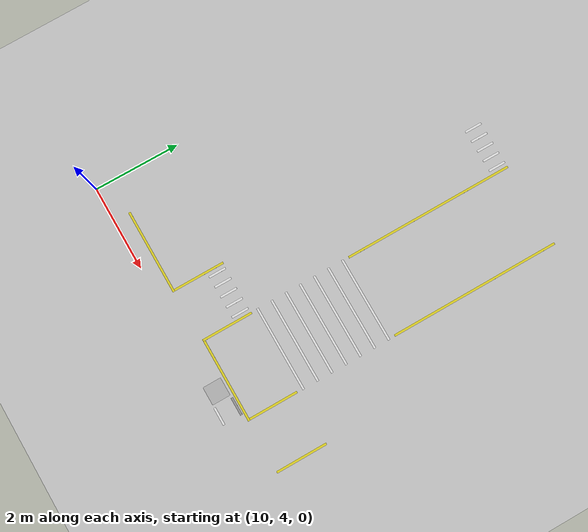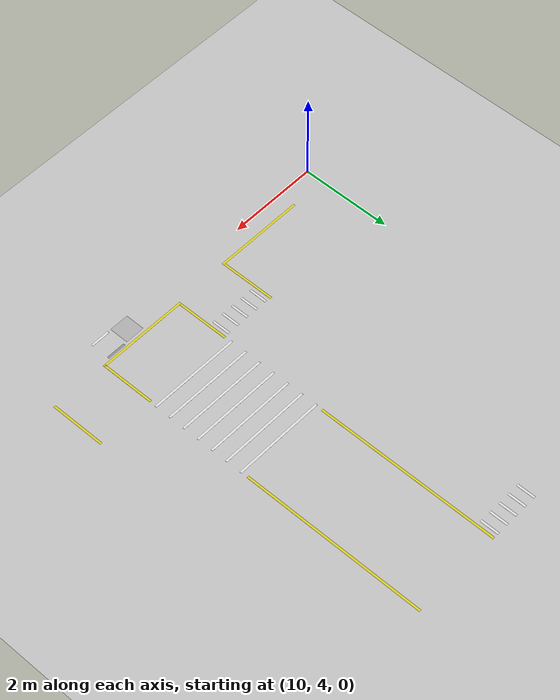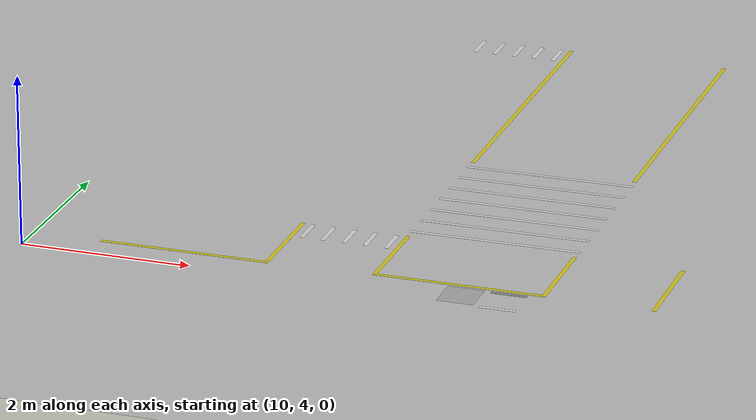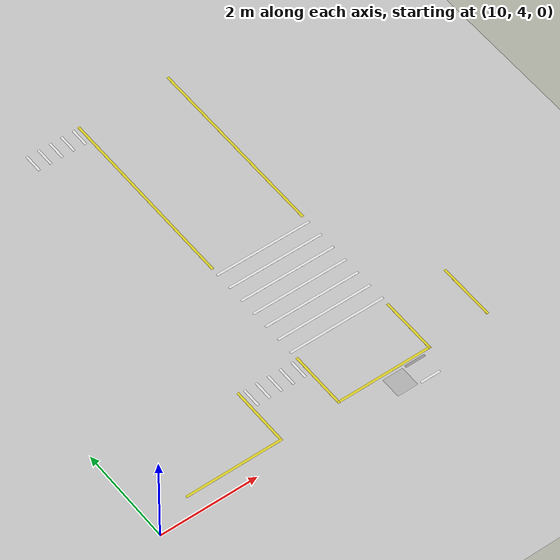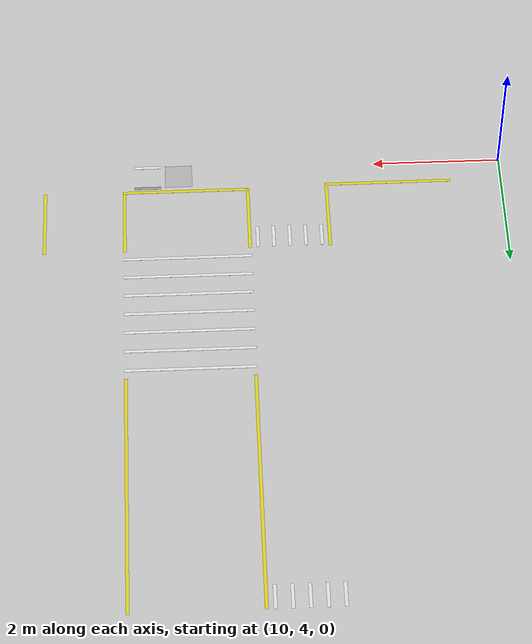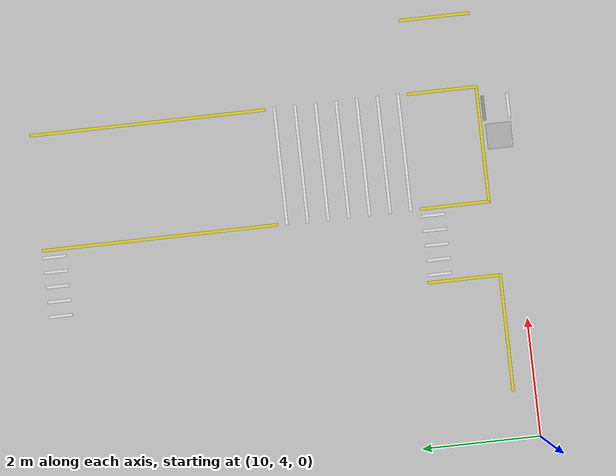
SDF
<sdf version="1.6">
 <world name="default">
  <model name="ground_plane">
   <static>1</static>
   <link name="link">
    <collision name="collision">
     <geometry><plane><normal>0 0 1</normal><size>100 100</size></plane></geometry>
     <surface><friction><ode><mu>100</mu><mu2>50</mu2></ode></friction></surface>
    </collision>
    <visual name="visual">
     <cast_shadows>0</cast_shadows>
     <geometry><plane><normal>0 0 1</normal><size>100 100</size></plane></geometry>
     <material>
      <script><uri>file://media/materials/scripts/gazebo.material</uri><name>Gazebo/Grey</name></script>
     </material>
    </visual>
   </link>
  </model>
  <model name="whiteLine_42_3">
   <link name="link_3">
    <inertial>
     <mass>1</mass>
     <inertia>
      <ixx>0.166667</ixx>
      <ixy>0</ixy>
      <ixz>0</ixz>
      <iyy>0.166667</iyy>
      <iyz>0</iyz>
      <izz>0.166667</izz>
     </inertia>
    </inertial>
    <visual name="visual">
     <pose>-0.21 0 0 0 -0 0</pose>
     <geometry><box><size>0.05 0.42 0.001</size></box></geometry>
     <material>
      <lighting>1</lighting>
      <script><uri>file://media/materials/scripts/gazebo.material</uri><name>Gazebo/White</name></script>
      <shader type="pixel"><normal_map>__default__</normal_map></shader>
      <ambient>1 1 1 1</ambient>
      <diffuse>1 1 1 1</diffuse>
      <specular>0.01 0.01 0.01 1</specular>
      <emissive>0 0 0 1</emissive>
     </material>
    </visual>
    <visual name="ModelPreview_7::link_3::visual_1">
     <pose>0.21 0 0 0 -0 0</pose>
     <geometry><box><size>0.05 0.42 0.001</size></box></geometry>
     <material>
      <lighting>1</lighting>
      <script><uri>file://media/materials/scripts/gazebo.material</uri><name>Gazebo/Grey</name></script>
      <shader type="pixel"><normal_map>__default__</normal_map></shader>
      <ambient>1 1 1 1</ambient>
      <diffuse>1 1 1 1</diffuse>
      <specular>0.01 0.01 0.01 1</specular>
      <emissive>0 0 0 1</emissive>
     </material>
    </visual>
    <collision name="collision">
     <pose>-0.21 0 0 0 -0 0</pose>
     <geometry><box><size>0.05 0.42 1e-05</size></box></geometry>
     <surface>
      <friction>
       <ode><mu>1</mu><mu2>1</mu2><fdir1>0 0 0</fdir1><slip1>0</slip1><slip2>0</slip2></ode>
       <torsional>
        <coefficient>1</coefficient>
        <patch_radius>0</patch_radius>
        <surface_radius>0</surface_radius>
        <use_patch_radius>1</use_patch_radius>
        <ode><slip>0</slip></ode>
       </torsional>
      </friction>
      <bounce><restitution_coefficient>0</restitution_coefficient><threshold>1e+06</threshold></bounce>
      <contact>
       <collide_without_contact>0</collide_without_contact>
       <collide_without_contact_bitmask>1</collide_without_contact_bitmask>
       <collide_bitmask>1</collide_bitmask>
       <ode>
        <soft_cfm>0</soft_cfm>
        <soft_erp>0.2</soft_erp>
        <kp>1e+13</kp>
        <kd>1</kd>
        <max_vel>0.01</max_vel>
        <min_depth>0</min_depth>
       </ode>
       <bullet>
        <split_impulse>1</split_impulse>
        <split_impulse_penetration_threshold>-0.01</split_impulse_penetration_threshold>
        <soft_cfm>0</soft_cfm>
        <soft_erp>0.2</soft_erp>
        <kp>1e+13</kp>
        <kd>1</kd>
       </bullet>
      </contact>
     </surface>
    </collision>
    <collision name="collision_1">
     <pose>0.21 0 0 0 -0 0</pose>
     <geometry><box><size>0.05 0.42 1e-05</size></box></geometry>
     <surface>
      <friction>
       <ode><mu>1</mu><mu2>1</mu2><fdir1>0 0 0</fdir1><slip1>0</slip1><slip2>0</slip2></ode>
       <torsional>
        <coefficient>1</coefficient>
        <patch_radius>0</patch_radius>
        <surface_radius>0</surface_radius>
        <use_patch_radius>1</use_patch_radius>
        <ode><slip>0</slip></ode>
       </torsional>
      </friction>
      <bounce><restitution_coefficient>0</restitution_coefficient><threshold>1e+06</threshold></bounce>
      <contact>
       <collide_without_contact>0</collide_without_contact>
       <collide_without_contact_bitmask>1</collide_without_contact_bitmask>
       <collide_bitmask>1</collide_bitmask>
       <ode>
        <soft_cfm>0</soft_cfm>
        <soft_erp>0.2</soft_erp>
        <kp>1e+13</kp>
        <kd>1</kd>
        <max_vel>0.01</max_vel>
        <min_depth>0</min_depth>
       </ode>
       <bullet>
        <split_impulse>1</split_impulse>
        <split_impulse_penetration_threshold>-0.01</split_impulse_penetration_threshold>
        <soft_cfm>0</soft_cfm>
        <soft_erp>0.2</soft_erp>
        <kp>1e+13</kp>
        <kd>1</kd>
       </bullet>
      </contact>
     </surface>
    </collision>
   </link>
   <static>1</static>
   <pose>15.6004 4.13233 0 0 -0 1.5708</pose>
  </model>
  <model name="forkliftRoadSign">
   <link name="link_7">
    <inertial>
     <mass>1</mass>
     <inertia>
      <ixx>0.166667</ixx>
      <ixy>0</ixy>
      <ixz>0</ixz>
      <iyy>0.166667</iyy>
      <iyz>0</iyz>
      <izz>0.166667</izz>
     </inertia>
    </inertial>
    <visual name="visual">
     <pose>-0.2 -0.2 0.01 -1.5708 -0 0</pose>
     <geometry>
      <mesh><uri>model://forkliftRoadSign/model/model.dae</uri><scale>0.7 0.7 0.7</scale></mesh>
     </geometry>
     <material><lighting>1</lighting></material>
    </visual>
    <collision name="collision">
     <geometry><box><size>0.4 0.4 1e-05</size></box></geometry>
     <surface>
      <friction>
       <ode><mu>1</mu><mu2>1</mu2><fdir1>0 0 0</fdir1><slip1>0</slip1><slip2>0</slip2></ode>
       <torsional>
        <coefficient>1</coefficient>
        <patch_radius>0</patch_radius>
        <surface_radius>0</surface_radius>
        <use_patch_radius>1</use_patch_radius>
        <ode><slip>0</slip></ode>
       </torsional>
      </friction>
      <bounce><restitution_coefficient>0</restitution_coefficient><threshold>1e+06</threshold></bounce>
      <contact>
       <collide_without_contact>0</collide_without_contact>
       <collide_without_contact_bitmask>1</collide_without_contact_bitmask>
       <collide_bitmask>1</collide_bitmask>
       <ode>
        <soft_cfm>0</soft_cfm>
        <soft_erp>0.2</soft_erp>
        <kp>1e+13</kp>
        <kd>1</kd>
        <max_vel>0.01</max_vel>
        <min_depth>0</min_depth>
       </ode>
       <bullet>
        <split_impulse>1</split_impulse>
        <split_impulse_penetration_threshold>-0.01</split_impulse_penetration_threshold>
        <soft_cfm>0</soft_cfm>
        <soft_erp>0.2</soft_erp>
        <kp>1e+13</kp>
        <kd>1</kd>
       </bullet>
      </contact>
     </surface>
    </collision>
   </link>
   <static>1</static>
   <pose>15.1 4.14241 0 0 0 -1.5708</pose>
  </model>
  <model name="line2m">
   <link name="link_0">
    <inertial>
     <mass>1</mass>
     <inertia>
      <ixx>0.166667</ixx>
      <ixy>0</ixy>
      <ixz>0</ixz>
      <iyy>0.166667</iyy>
      <iyz>0</iyz>
      <izz>0.166667</izz>
     </inertia>
    </inertial>
    <visual name="visual">
     <geometry><box><size>2 0.05 0.001</size></box></geometry>
     <material>
      <lighting>1</lighting>
      <script><uri>file://media/materials/scripts/gazebo.material</uri><name>Gazebo/Yellow</name></script>
     </material>
    </visual>
    <collision name="collision">
     <geometry><box><size>2 0.05 1e-05</size></box></geometry>
     <surface>
      <friction>
       <ode><mu>1</mu><mu2>1</mu2><fdir1>0 0 0</fdir1><slip1>0</slip1><slip2>0</slip2></ode>
       <torsional>
        <coefficient>1</coefficient>
        <patch_radius>0</patch_radius>
        <surface_radius>0</surface_radius>
        <use_patch_radius>1</use_patch_radius>
        <ode><slip>0</slip></ode>
       </torsional>
      </friction>
      <bounce><restitution_coefficient>0</restitution_coefficient><threshold>1e+06</threshold></bounce>
      <contact>
       <collide_without_contact>0</collide_without_contact>
       <collide_without_contact_bitmask>1</collide_without_contact_bitmask>
       <collide_bitmask>1</collide_bitmask>
       <ode>
        <soft_cfm>0</soft_cfm>
        <soft_erp>0.2</soft_erp>
        <kp>1e+13</kp>
        <kd>1</kd>
        <max_vel>0.01</max_vel>
        <min_depth>0</min_depth>
       </ode>
       <bullet>
        <split_impulse>1</split_impulse>
        <split_impulse_penetration_threshold>-0.01</split_impulse_penetration_threshold>
        <soft_cfm>0</soft_cfm>
        <soft_erp>0.2</soft_erp>
        <kp>1e+13</kp>
        <kd>1</kd>
       </bullet>
      </contact>
     </surface>
    </collision>
   </link>
   <static>1</static>
   <pose>15 4.425 0 0 -0 0</pose>
  </model>
  <model name="line2m_0">
   <link name="link_0">
    <inertial>
     <mass>1</mass>
     <inertia>
      <ixx>0.166667</ixx>
      <ixy>0</ixy>
      <ixz>0</ixz>
      <iyy>0.166667</iyy>
      <iyz>0</iyz>
      <izz>0.166667</izz>
     </inertia>
    </inertial>
    <visual name="visual">
     <geometry><box><size>2 0.05 0.001</size></box></geometry>
     <material>
      <lighting>1</lighting>
      <script><uri>file://media/materials/scripts/gazebo.material</uri><name>Gazebo/Yellow</name></script>
     </material>
    </visual>
    <collision name="collision">
     <geometry><box><size>2 0.05 1e-05</size></box></geometry>
     <surface>
      <friction>
       <ode><mu>1</mu><mu2>1</mu2><fdir1>0 0 0</fdir1><slip1>0</slip1><slip2>0</slip2></ode>
       <torsional>
        <coefficient>1</coefficient>
        <patch_radius>0</patch_radius>
        <surface_radius>0</surface_radius>
        <use_patch_radius>1</use_patch_radius>
        <ode><slip>0</slip></ode>
       </torsional>
      </friction>
      <bounce><restitution_coefficient>0</restitution_coefficient><threshold>1e+06</threshold></bounce>
      <contact>
       <collide_without_contact>0</collide_without_contact>
       <collide_without_contact_bitmask>1</collide_without_contact_bitmask>
       <collide_bitmask>1</collide_bitmask>
       <ode>
        <soft_cfm>0</soft_cfm>
        <soft_erp>0.2</soft_erp>
        <kp>1e+13</kp>
        <kd>1</kd>
        <max_vel>0.01</max_vel>
        <min_depth>0</min_depth>
       </ode>
       <bullet>
        <split_impulse>1</split_impulse>
        <split_impulse_penetration_threshold>-0.01</split_impulse_penetration_threshold>
        <soft_cfm>0</soft_cfm>
        <soft_erp>0.2</soft_erp>
        <kp>1e+13</kp>
        <kd>1</kd>
       </bullet>
      </contact>
     </surface>
    </collision>
   </link>
   <static>1</static>
   <pose>11.8 4.375 0 0 -0 0</pose>
  </model>
  <model name="line120cm_9">
   <link name="link_1">
    <inertial>
     <mass>1</mass>
     <inertia>
      <ixx>0.166667</ixx>
      <ixy>0</ixy>
      <ixz>0</ixz>
      <iyy>0.166667</iyy>
      <iyz>0</iyz>
      <izz>0.166667</izz>
     </inertia>
    </inertial>
    <visual name="visual">
     <geometry><box><size>1.2 0.05 0.001</size></box></geometry>
     <material>
      <script><uri>file://media/materials/scripts/gazebo.material</uri><name>Gazebo/Yellow</name></script>
     </material>
    </visual>
    <collision name="collision">
     <geometry><box><size>1.2 0.05 1e-05</size></box></geometry>
     <surface>
      <friction>
       <ode><mu>1</mu><mu2>1</mu2><fdir1>0 0 0</fdir1><slip1>0</slip1><slip2>0</slip2></ode>
       <torsional>
        <coefficient>1</coefficient>
        <patch_radius>0</patch_radius>
        <surface_radius>0</surface_radius>
        <use_patch_radius>1</use_patch_radius>
        <ode><slip>0</slip></ode>
       </torsional>
      </friction>
      <bounce><restitution_coefficient>0</restitution_coefficient><threshold>1e+06</threshold></bounce>
      <contact>
       <collide_without_contact>0</collide_without_contact>
       <collide_without_contact_bitmask>1</collide_without_contact_bitmask>
       <collide_bitmask>1</collide_bitmask>
       <ode>
        <soft_cfm>0</soft_cfm>
        <soft_erp>0.2</soft_erp>
        <kp>1e+13</kp>
        <kd>1</kd>
        <max_vel>0.01</max_vel>
        <min_depth>0</min_depth>
       </ode>
       <bullet>
        <split_impulse>1</split_impulse>
        <split_impulse_penetration_threshold>-0.01</split_impulse_penetration_threshold>
        <soft_cfm>0</soft_cfm>
        <soft_erp>0.2</soft_erp>
        <kp>1e+13</kp>
        <kd>1</kd>
       </bullet>
      </contact>
     </surface>
    </collision>
   </link>
   <static>1</static>
   <pose>14.025 5 0 0 -0 1.5708</pose>
  </model>
  <model name="line120cm_10">
   <link name="link_1">
    <inertial>
     <mass>1</mass>
     <inertia>
      <ixx>0.166667</ixx>
      <ixy>0</ixy>
      <ixz>0</ixz>
      <iyy>0.166667</iyy>
      <iyz>0</iyz>
      <izz>0.166667</izz>
     </inertia>
    </inertial>
    <visual name="visual">
     <geometry><box><size>1.2 0.05 0.001</size></box></geometry>
     <material>
      <script><uri>file://media/materials/scripts/gazebo.material</uri><name>Gazebo/Yellow</name></script>
     </material>
    </visual>
    <collision name="collision">
     <geometry><box><size>1.2 0.05 1e-05</size></box></geometry>
     <surface>
      <friction>
       <ode><mu>1</mu><mu2>1</mu2><fdir1>0 0 0</fdir1><slip1>0</slip1><slip2>0</slip2></ode>
       <torsional>
        <coefficient>1</coefficient>
        <patch_radius>0</patch_radius>
        <surface_radius>0</surface_radius>
        <use_patch_radius>1</use_patch_radius>
        <ode><slip>0</slip></ode>
       </torsional>
      </friction>
      <bounce><restitution_coefficient>0</restitution_coefficient><threshold>1e+06</threshold></bounce>
      <contact>
       <collide_without_contact>0</collide_without_contact>
       <collide_without_contact_bitmask>1</collide_without_contact_bitmask>
       <collide_bitmask>1</collide_bitmask>
       <ode>
        <soft_cfm>0</soft_cfm>
        <soft_erp>0.2</soft_erp>
        <kp>1e+13</kp>
        <kd>1</kd>
        <max_vel>0.01</max_vel>
        <min_depth>0</min_depth>
       </ode>
       <bullet>
        <split_impulse>1</split_impulse>
        <split_impulse_penetration_threshold>-0.01</split_impulse_penetration_threshold>
        <soft_cfm>0</soft_cfm>
        <soft_erp>0.2</soft_erp>
        <kp>1e+13</kp>
        <kd>1</kd>
       </bullet>
      </contact>
     </surface>
    </collision>
   </link>
   <static>1</static>
   <pose>15.975 5 0 0 -0 1.5708</pose>
  </model>
  <model name="line120cm_11">
   <link name="link_1">
    <inertial>
     <mass>1</mass>
     <inertia>
      <ixx>0.166667</ixx>
      <ixy>0</ixy>
      <ixz>0</ixz>
      <iyy>0.166667</iyy>
      <iyz>0</iyz>
      <izz>0.166667</izz>
     </inertia>
    </inertial>
    <visual name="visual">
     <geometry><box><size>1.2 0.05 0.001</size></box></geometry>
     <material>
      <script><uri>file://media/materials/scripts/gazebo.material</uri><name>Gazebo/Yellow</name></script>
     </material>
    </visual>
    <collision name="collision">
     <geometry><box><size>1.2 0.05 1e-05</size></box></geometry>
     <surface>
      <friction>
       <ode><mu>1</mu><mu2>1</mu2><fdir1>0 0 0</fdir1><slip1>0</slip1><slip2>0</slip2></ode>
       <torsional>
        <coefficient>1</coefficient>
        <patch_radius>0</patch_radius>
        <surface_radius>0</surface_radius>
        <use_patch_radius>1</use_patch_radius>
        <ode><slip>0</slip></ode>
       </torsional>
      </friction>
      <bounce><restitution_coefficient>0</restitution_coefficient><threshold>1e+06</threshold></bounce>
      <contact>
       <collide_without_contact>0</collide_without_contact>
       <collide_without_contact_bitmask>1</collide_without_contact_bitmask>
       <collide_bitmask>1</collide_bitmask>
       <ode>
        <soft_cfm>0</soft_cfm>
        <soft_erp>0.2</soft_erp>
        <kp>1e+13</kp>
        <kd>1</kd>
        <max_vel>0.01</max_vel>
        <min_depth>0</min_depth>
       </ode>
       <bullet>
        <split_impulse>1</split_impulse>
        <split_impulse_penetration_threshold>-0.01</split_impulse_penetration_threshold>
        <soft_cfm>0</soft_cfm>
        <soft_erp>0.2</soft_erp>
        <kp>1e+13</kp>
        <kd>1</kd>
       </bullet>
      </contact>
     </surface>
    </collision>
   </link>
   <static>1</static>
   <pose>12.775 5 0 0 -0 1.5708</pose>
  </model>
  <model name="line120cm_12">
   <link name="link_1">
    <inertial>
     <mass>1</mass>
     <inertia>
      <ixx>0.166667</ixx>
      <ixy>0</ixy>
      <ixz>0</ixz>
      <iyy>0.166667</iyy>
      <iyz>0</iyz>
      <izz>0.166667</izz>
     </inertia>
    </inertial>
    <visual name="visual">
     <geometry><box><size>1.2 0.05 0.001</size></box></geometry>
     <material>
      <script><uri>file://media/materials/scripts/gazebo.material</uri><name>Gazebo/Yellow</name></script>
     </material>
    </visual>
    <collision name="collision">
     <geometry><box><size>1.2 0.05 1e-05</size></box></geometry>
     <surface>
      <friction>
       <ode><mu>1</mu><mu2>1</mu2><fdir1>0 0 0</fdir1><slip1>0</slip1><slip2>0</slip2></ode>
       <torsional>
        <coefficient>1</coefficient>
        <patch_radius>0</patch_radius>
        <surface_radius>0</surface_radius>
        <use_patch_radius>1</use_patch_radius>
        <ode><slip>0</slip></ode>
       </torsional>
      </friction>
      <bounce><restitution_coefficient>0</restitution_coefficient><threshold>1e+06</threshold></bounce>
      <contact>
       <collide_without_contact>0</collide_without_contact>
       <collide_without_contact_bitmask>1</collide_without_contact_bitmask>
       <collide_bitmask>1</collide_bitmask>
       <ode>
        <soft_cfm>0</soft_cfm>
        <soft_erp>0.2</soft_erp>
        <kp>1e+13</kp>
        <kd>1</kd>
        <max_vel>0.01</max_vel>
        <min_depth>0</min_depth>
       </ode>
       <bullet>
        <split_impulse>1</split_impulse>
        <split_impulse_penetration_threshold>-0.01</split_impulse_penetration_threshold>
        <soft_cfm>0</soft_cfm>
        <soft_erp>0.2</soft_erp>
        <kp>1e+13</kp>
        <kd>1</kd>
       </bullet>
      </contact>
     </surface>
    </collision>
   </link>
   <static>1</static>
   <pose>17.225 5 0 0 -0 1.5708</pose>
  </model>
  <model name="zebra_crossing_200cmx210cm">
   <link name="link_0">
    <inertial>
     <mass>1</mass>
     <inertia>
      <ixx>0.166667</ixx>
      <ixy>0</ixy>
      <ixz>0</ixz>
      <iyy>0.166667</iyy>
      <iyz>0</iyz>
      <izz>0.166667</izz>
     </inertia>
    </inertial>
    <visual name="ModelPreview_1::link_0::visual_6">
     <pose>-1.05 0 0 0 -0 0</pose>
     <geometry><box><size>0.05 2 0.001</size></box></geometry>
     <material>
      <lighting>1</lighting>
      <script><uri>file://media/materials/scripts/gazebo.material</uri><name>Gazebo/White</name></script>
     </material>
    </visual>
    <visual name="ModelPreview_1::link_0::visual_1">
     <pose>0.35 0 0 0 -0 0</pose>
     <geometry><box><size>0.05 2 0.001</size></box></geometry>
     <material>
      <lighting>1</lighting>
      <script><uri>file://media/materials/scripts/gazebo.material</uri><name>Gazebo/White</name></script>
     </material>
    </visual>
    <visual name="ModelPreview_1::link_0::visual_5">
     <pose>-0.7 0 0 0 -0 0</pose>
     <geometry><box><size>0.05 2 0.001</size></box></geometry>
     <material>
      <lighting>1</lighting>
      <script><uri>file://media/materials/scripts/gazebo.material</uri><name>Gazebo/White</name></script>
     </material>
    </visual>
    <visual name="ModelPreview_1::link_0::visual_3">
     <pose>1.05 0 0 0 -0 0</pose>
     <geometry><box><size>0.05 2 0.001</size></box></geometry>
     <material>
      <lighting>1</lighting>
      <script><uri>file://media/materials/scripts/gazebo.material</uri><name>Gazebo/White</name></script>
     </material>
    </visual>
    <visual name="ModelPreview_1::link_0::visual_2">
     <pose>0.7 0 0 0 -0 0</pose>
     <geometry><box><size>0.05 2 0.001</size></box></geometry>
     <material>
      <lighting>1</lighting>
      <script><uri>file://media/materials/scripts/gazebo.material</uri><name>Gazebo/White</name></script>
     </material>
    </visual>
    <visual name="visual">
     <geometry><box><size>0.05 2 0.001</size></box></geometry>
     <material>
      <lighting>1</lighting>
      <script><uri>file://media/materials/scripts/gazebo.material</uri><name>Gazebo/White</name></script>
     </material>
    </visual>
    <visual name="ModelPreview_1::link_0::visual_4">
     <pose>-0.35 0 0 0 -0 0</pose>
     <geometry><box><size>0.05 2 0.001</size></box></geometry>
     <material>
      <lighting>1</lighting>
      <script><uri>file://media/materials/scripts/gazebo.material</uri><name>Gazebo/White</name></script>
     </material>
    </visual>
    <collision name="collision_2">
     <pose>0.7 0 0 0 -0 0</pose>
     <geometry><box><size>0.05 2 1e-05</size></box></geometry>
     <surface>
      <friction>
       <ode><mu>1</mu><mu2>1</mu2><fdir1>0 0 0</fdir1><slip1>0</slip1><slip2>0</slip2></ode>
       <torsional>
        <coefficient>1</coefficient>
        <patch_radius>0</patch_radius>
        <surface_radius>0</surface_radius>
        <use_patch_radius>1</use_patch_radius>
        <ode><slip>0</slip></ode>
       </torsional>
      </friction>
      <bounce><restitution_coefficient>0</restitution_coefficient><threshold>1e+06</threshold></bounce>
      <contact>
       <collide_without_contact>0</collide_without_contact>
       <collide_without_contact_bitmask>1</collide_without_contact_bitmask>
       <collide_bitmask>1</collide_bitmask>
       <ode>
        <soft_cfm>0</soft_cfm>
        <soft_erp>0.2</soft_erp>
        <kp>1e+13</kp>
        <kd>1</kd>
        <max_vel>0.01</max_vel>
        <min_depth>0</min_depth>
       </ode>
       <bullet>
        <split_impulse>1</split_impulse>
        <split_impulse_penetration_threshold>-0.01</split_impulse_penetration_threshold>
        <soft_cfm>0</soft_cfm>
        <soft_erp>0.2</soft_erp>
        <kp>1e+13</kp>
        <kd>1</kd>
       </bullet>
      </contact>
     </surface>
    </collision>
    <collision name="collision_4">
     <pose>-0.35 0 0 0 -0 0</pose>
     <geometry><box><size>0.05 2 1e-05</size></box></geometry>
     <surface>
      <friction>
       <ode><mu>1</mu><mu2>1</mu2><fdir1>0 0 0</fdir1><slip1>0</slip1><slip2>0</slip2></ode>
       <torsional>
        <coefficient>1</coefficient>
        <patch_radius>0</patch_radius>
        <surface_radius>0</surface_radius>
        <use_patch_radius>1</use_patch_radius>
        <ode><slip>0</slip></ode>
       </torsional>
      </friction>
      <bounce><restitution_coefficient>0</restitution_coefficient><threshold>1e+06</threshold></bounce>
      <contact>
       <collide_without_contact>0</collide_without_contact>
       <collide_without_contact_bitmask>1</collide_without_contact_bitmask>
       <collide_bitmask>1</collide_bitmask>
       <ode>
        <soft_cfm>0</soft_cfm>
        <soft_erp>0.2</soft_erp>
        <kp>1e+13</kp>
        <kd>1</kd>
        <max_vel>0.01</max_vel>
        <min_depth>0</min_depth>
       </ode>
       <bullet>
        <split_impulse>1</split_impulse>
        <split_impulse_penetration_threshold>-0.01</split_impulse_penetration_threshold>
        <soft_cfm>0</soft_cfm>
        <soft_erp>0.2</soft_erp>
        <kp>1e+13</kp>
        <kd>1</kd>
       </bullet>
      </contact>
     </surface>
    </collision>
    <collision name="collision">
     <geometry><box><size>0.05 2 1e-05</size></box></geometry>
     <surface>
      <friction>
       <ode><mu>1</mu><mu2>1</mu2><fdir1>0 0 0</fdir1><slip1>0</slip1><slip2>0</slip2></ode>
       <torsional>
        <coefficient>1</coefficient>
        <patch_radius>0</patch_radius>
        <surface_radius>0</surface_radius>
        <use_patch_radius>1</use_patch_radius>
        <ode><slip>0</slip></ode>
       </torsional>
      </friction>
      <bounce><restitution_coefficient>0</restitution_coefficient><threshold>1e+06</threshold></bounce>
      <contact>
       <collide_without_contact>0</collide_without_contact>
       <collide_without_contact_bitmask>1</collide_without_contact_bitmask>
       <collide_bitmask>1</collide_bitmask>
       <ode>
        <soft_cfm>0</soft_cfm>
        <soft_erp>0.2</soft_erp>
        <kp>1e+13</kp>
        <kd>1</kd>
        <max_vel>0.01</max_vel>
        <min_depth>0</min_depth>
       </ode>
       <bullet>
        <split_impulse>1</split_impulse>
        <split_impulse_penetration_threshold>-0.01</split_impulse_penetration_threshold>
        <soft_cfm>0</soft_cfm>
        <soft_erp>0.2</soft_erp>
        <kp>1e+13</kp>
        <kd>1</kd>
       </bullet>
      </contact>
     </surface>
    </collision>
    <collision name="collision_5">
     <pose>-0.7 0 0 0 -0 0</pose>
     <geometry><box><size>0.05 2 1e-05</size></box></geometry>
     <surface>
      <friction>
       <ode><mu>1</mu><mu2>1</mu2><fdir1>0 0 0</fdir1><slip1>0</slip1><slip2>0</slip2></ode>
       <torsional>
        <coefficient>1</coefficient>
        <patch_radius>0</patch_radius>
        <surface_radius>0</surface_radius>
        <use_patch_radius>1</use_patch_radius>
        <ode><slip>0</slip></ode>
       </torsional>
      </friction>
      <bounce><restitution_coefficient>0</restitution_coefficient><threshold>1e+06</threshold></bounce>
      <contact>
       <collide_without_contact>0</collide_without_contact>
       <collide_without_contact_bitmask>1</collide_without_contact_bitmask>
       <collide_bitmask>1</collide_bitmask>
       <ode>
        <soft_cfm>0</soft_cfm>
        <soft_erp>0.2</soft_erp>
        <kp>1e+13</kp>
        <kd>1</kd>
        <max_vel>0.01</max_vel>
        <min_depth>0</min_depth>
       </ode>
       <bullet>
        <split_impulse>1</split_impulse>
        <split_impulse_penetration_threshold>-0.01</split_impulse_penetration_threshold>
        <soft_cfm>0</soft_cfm>
        <soft_erp>0.2</soft_erp>
        <kp>1e+13</kp>
        <kd>1</kd>
       </bullet>
      </contact>
     </surface>
    </collision>
    <collision name="collision_1">
     <pose>0.35 0 0 0 -0 0</pose>
     <geometry><box><size>0.05 2 1e-05</size></box></geometry>
     <surface>
      <friction>
       <ode><mu>1</mu><mu2>1</mu2><fdir1>0 0 0</fdir1><slip1>0</slip1><slip2>0</slip2></ode>
       <torsional>
        <coefficient>1</coefficient>
        <patch_radius>0</patch_radius>
        <surface_radius>0</surface_radius>
        <use_patch_radius>1</use_patch_radius>
        <ode><slip>0</slip></ode>
       </torsional>
      </friction>
      <bounce><restitution_coefficient>0</restitution_coefficient><threshold>1e+06</threshold></bounce>
      <contact>
       <collide_without_contact>0</collide_without_contact>
       <collide_without_contact_bitmask>1</collide_without_contact_bitmask>
       <collide_bitmask>1</collide_bitmask>
       <ode>
        <soft_cfm>0</soft_cfm>
        <soft_erp>0.2</soft_erp>
        <kp>1e+13</kp>
        <kd>1</kd>
        <max_vel>0.01</max_vel>
        <min_depth>0</min_depth>
       </ode>
       <bullet>
        <split_impulse>1</split_impulse>
        <split_impulse_penetration_threshold>-0.01</split_impulse_penetration_threshold>
        <soft_cfm>0</soft_cfm>
        <soft_erp>0.2</soft_erp>
        <kp>1e+13</kp>
        <kd>1</kd>
       </bullet>
      </contact>
     </surface>
    </collision>
    <collision name="collision_3">
     <pose>1.05 0 0 0 -0 0</pose>
     <geometry><box><size>0.05 2 1e-05</size></box></geometry>
     <surface>
      <friction>
       <ode><mu>1</mu><mu2>1</mu2><fdir1>0 0 0</fdir1><slip1>0</slip1><slip2>0</slip2></ode>
       <torsional>
        <coefficient>1</coefficient>
        <patch_radius>0</patch_radius>
        <surface_radius>0</surface_radius>
        <use_patch_radius>1</use_patch_radius>
        <ode><slip>0</slip></ode>
       </torsional>
      </friction>
      <bounce><restitution_coefficient>0</restitution_coefficient><threshold>1e+06</threshold></bounce>
      <contact>
       <collide_without_contact>0</collide_without_contact>
       <collide_without_contact_bitmask>1</collide_without_contact_bitmask>
       <collide_bitmask>1</collide_bitmask>
       <ode>
        <soft_cfm>0</soft_cfm>
        <soft_erp>0.2</soft_erp>
        <kp>1e+13</kp>
        <kd>1</kd>
        <max_vel>0.01</max_vel>
        <min_depth>0</min_depth>
       </ode>
       <bullet>
        <split_impulse>1</split_impulse>
        <split_impulse_penetration_threshold>-0.01</split_impulse_penetration_threshold>
        <soft_cfm>0</soft_cfm>
        <soft_erp>0.2</soft_erp>
        <kp>1e+13</kp>
        <kd>1</kd>
       </bullet>
      </contact>
     </surface>
    </collision>
    <collision name="collision_6">
     <pose>-1.05 0 0 0 -0 0</pose>
     <geometry><box><size>0.05 2 1e-05</size></box></geometry>
     <surface>
      <friction>
       <ode><mu>1</mu><mu2>1</mu2><fdir1>0 0 0</fdir1><slip1>0</slip1><slip2>0</slip2></ode>
       <torsional>
        <coefficient>1</coefficient>
        <patch_radius>0</patch_radius>
        <surface_radius>0</surface_radius>
        <use_patch_radius>1</use_patch_radius>
        <ode><slip>0</slip></ode>
       </torsional>
      </friction>
      <bounce><restitution_coefficient>0</restitution_coefficient><threshold>1e+06</threshold></bounce>
      <contact>
       <collide_without_contact>0</collide_without_contact>
       <collide_without_contact_bitmask>1</collide_without_contact_bitmask>
       <collide_bitmask>1</collide_bitmask>
       <ode>
        <soft_cfm>0</soft_cfm>
        <soft_erp>0.2</soft_erp>
        <kp>1e+13</kp>
        <kd>1</kd>
        <max_vel>0.01</max_vel>
        <min_depth>0</min_depth>
       </ode>
       <bullet>
        <split_impulse>1</split_impulse>
        <split_impulse_penetration_threshold>-0.01</split_impulse_penetration_threshold>
        <soft_cfm>0</soft_cfm>
        <soft_erp>0.2</soft_erp>
        <kp>1e+13</kp>
        <kd>1</kd>
       </bullet>
      </contact>
     </surface>
    </collision>
   </link>
   <static>1</static>
   <pose>15 6.8 0 0 -0 1.5708</pose>
  </model>
  <model name="zebro_crossing_40cmx120cm">
   <link name="link_1">
    <inertial>
     <mass>1</mass>
     <inertia>
      <ixx>0.166667</ixx>
      <ixy>0</ixy>
      <ixz>0</ixz>
      <iyy>0.166667</iyy>
      <iyz>0</iyz>
      <izz>0.166667</izz>
     </inertia>
    </inertial>
    <visual name="ModelPreview_3::link_1::visual_4">
     <pose>-0.5 0 0 0 -0 0</pose>
     <geometry><box><size>0.05 0.4 0.001</size></box></geometry>
     <material>
      <lighting>1</lighting>
      <script><uri>file://media/materials/scripts/gazebo.material</uri><name>Gazebo/White</name></script>
     </material>
    </visual>
    <visual name="ModelPreview_3::link_1::visual_1">
     <pose>0.25 0 0 0 -0 0</pose>
     <geometry><box><size>0.05 0.4 0.001</size></box></geometry>
     <material>
      <lighting>1</lighting>
      <script><uri>file://media/materials/scripts/gazebo.material</uri><name>Gazebo/White</name></script>
     </material>
    </visual>
    <visual name="ModelPreview_3::link_1::visual_2">
     <pose>0.5 0 0 0 -0 0</pose>
     <geometry><box><size>0.05 0.4 0.001</size></box></geometry>
     <material>
      <lighting>1</lighting>
      <script><uri>file://media/materials/scripts/gazebo.material</uri><name>Gazebo/White</name></script>
     </material>
    </visual>
    <visual name="visual">
     <geometry><box><size>0.05 0.4 0.001</size></box></geometry>
     <material>
      <lighting>1</lighting>
      <script><uri>file://media/materials/scripts/gazebo.material</uri><name>Gazebo/White</name></script>
     </material>
    </visual>
    <visual name="ModelPreview_3::link_1::visual_3">
     <pose>-0.25 0 0 0 -0 0</pose>
     <geometry><box><size>0.05 0.4 0.001</size></box></geometry>
     <material>
      <lighting>1</lighting>
      <script><uri>file://media/materials/scripts/gazebo.material</uri><name>Gazebo/White</name></script>
     </material>
    </visual>
    <collision name="collision_1">
     <pose>0.25 0 0 0 -0 0</pose>
     <geometry><box><size>0.05 0.4 1e-06</size></box></geometry>
     <surface>
      <friction>
       <ode><mu>1</mu><mu2>1</mu2><fdir1>0 0 0</fdir1><slip1>0</slip1><slip2>0</slip2></ode>
       <torsional>
        <coefficient>1</coefficient>
        <patch_radius>0</patch_radius>
        <surface_radius>0</surface_radius>
        <use_patch_radius>1</use_patch_radius>
        <ode><slip>0</slip></ode>
       </torsional>
      </friction>
      <bounce><restitution_coefficient>0</restitution_coefficient><threshold>1e+06</threshold></bounce>
      <contact>
       <collide_without_contact>0</collide_without_contact>
       <collide_without_contact_bitmask>1</collide_without_contact_bitmask>
       <collide_bitmask>1</collide_bitmask>
       <ode>
        <soft_cfm>0</soft_cfm>
        <soft_erp>0.2</soft_erp>
        <kp>1e+13</kp>
        <kd>1</kd>
        <max_vel>0.01</max_vel>
        <min_depth>0</min_depth>
       </ode>
       <bullet>
        <split_impulse>1</split_impulse>
        <split_impulse_penetration_threshold>-0.01</split_impulse_penetration_threshold>
        <soft_cfm>0</soft_cfm>
        <soft_erp>0.2</soft_erp>
        <kp>1e+13</kp>
        <kd>1</kd>
       </bullet>
      </contact>
     </surface>
    </collision>
    <collision name="collision_2">
     <pose>0.5 0 0 0 -0 0</pose>
     <geometry><box><size>0.05 0.4 1e-06</size></box></geometry>
     <surface>
      <friction>
       <ode><mu>1</mu><mu2>1</mu2><fdir1>0 0 0</fdir1><slip1>0</slip1><slip2>0</slip2></ode>
       <torsional>
        <coefficient>1</coefficient>
        <patch_radius>0</patch_radius>
        <surface_radius>0</surface_radius>
        <use_patch_radius>1</use_patch_radius>
        <ode><slip>0</slip></ode>
       </torsional>
      </friction>
      <bounce><restitution_coefficient>0</restitution_coefficient><threshold>1e+06</threshold></bounce>
      <contact>
       <collide_without_contact>0</collide_without_contact>
       <collide_without_contact_bitmask>1</collide_without_contact_bitmask>
       <collide_bitmask>1</collide_bitmask>
       <ode>
        <soft_cfm>0</soft_cfm>
        <soft_erp>0.2</soft_erp>
        <kp>1e+13</kp>
        <kd>1</kd>
        <max_vel>0.01</max_vel>
        <min_depth>0</min_depth>
       </ode>
       <bullet>
        <split_impulse>1</split_impulse>
        <split_impulse_penetration_threshold>-0.01</split_impulse_penetration_threshold>
        <soft_cfm>0</soft_cfm>
        <soft_erp>0.2</soft_erp>
        <kp>1e+13</kp>
        <kd>1</kd>
       </bullet>
      </contact>
     </surface>
    </collision>
    <collision name="collision_3">
     <pose>-0.25 0 0 0 -0 0</pose>
     <geometry><box><size>0.05 0.4 1e-06</size></box></geometry>
     <surface>
      <friction>
       <ode><mu>1</mu><mu2>1</mu2><fdir1>0 0 0</fdir1><slip1>0</slip1><slip2>0</slip2></ode>
       <torsional>
        <coefficient>1</coefficient>
        <patch_radius>0</patch_radius>
        <surface_radius>0</surface_radius>
        <use_patch_radius>1</use_patch_radius>
        <ode><slip>0</slip></ode>
       </torsional>
      </friction>
      <bounce><restitution_coefficient>0</restitution_coefficient><threshold>1e+06</threshold></bounce>
      <contact>
       <collide_without_contact>0</collide_without_contact>
       <collide_without_contact_bitmask>1</collide_without_contact_bitmask>
       <collide_bitmask>1</collide_bitmask>
       <ode>
        <soft_cfm>0</soft_cfm>
        <soft_erp>0.2</soft_erp>
        <kp>1e+13</kp>
        <kd>1</kd>
        <max_vel>0.01</max_vel>
        <min_depth>0</min_depth>
       </ode>
       <bullet>
        <split_impulse>1</split_impulse>
        <split_impulse_penetration_threshold>-0.01</split_impulse_penetration_threshold>
        <soft_cfm>0</soft_cfm>
        <soft_erp>0.2</soft_erp>
        <kp>1e+13</kp>
        <kd>1</kd>
       </bullet>
      </contact>
     </surface>
    </collision>
    <collision name="collision">
     <geometry><box><size>0.05 0.4 1e-06</size></box></geometry>
     <surface>
      <friction>
       <ode><mu>1</mu><mu2>1</mu2><fdir1>0 0 0</fdir1><slip1>0</slip1><slip2>0</slip2></ode>
       <torsional>
        <coefficient>1</coefficient>
        <patch_radius>0</patch_radius>
        <surface_radius>0</surface_radius>
        <use_patch_radius>1</use_patch_radius>
        <ode><slip>0</slip></ode>
       </torsional>
      </friction>
      <bounce><restitution_coefficient>0</restitution_coefficient><threshold>1e+06</threshold></bounce>
      <contact>
       <collide_without_contact>0</collide_without_contact>
       <collide_without_contact_bitmask>1</collide_without_contact_bitmask>
       <collide_bitmask>1</collide_bitmask>
       <ode>
        <soft_cfm>0</soft_cfm>
        <soft_erp>0.2</soft_erp>
        <kp>1e+13</kp>
        <kd>1</kd>
        <max_vel>0.01</max_vel>
        <min_depth>0</min_depth>
       </ode>
       <bullet>
        <split_impulse>1</split_impulse>
        <split_impulse_penetration_threshold>-0.01</split_impulse_penetration_threshold>
        <soft_cfm>0</soft_cfm>
        <soft_erp>0.2</soft_erp>
        <kp>1e+13</kp>
        <kd>1</kd>
       </bullet>
      </contact>
     </surface>
    </collision>
    <collision name="collision_4">
     <pose>-0.5 0 0 0 -0 0</pose>
     <geometry><box><size>0.05 0.4 1e-06</size></box></geometry>
     <surface>
      <friction>
       <ode><mu>1</mu><mu2>1</mu2><fdir1>0 0 0</fdir1><slip1>0</slip1><slip2>0</slip2></ode>
       <torsional>
        <coefficient>1</coefficient>
        <patch_radius>0</patch_radius>
        <surface_radius>0</surface_radius>
        <use_patch_radius>1</use_patch_radius>
        <ode><slip>0</slip></ode>
       </torsional>
      </friction>
      <bounce><restitution_coefficient>0</restitution_coefficient><threshold>1e+06</threshold></bounce>
      <contact>
       <collide_without_contact>0</collide_without_contact>
       <collide_without_contact_bitmask>1</collide_without_contact_bitmask>
       <collide_bitmask>1</collide_bitmask>
       <ode>
        <soft_cfm>0</soft_cfm>
        <soft_erp>0.2</soft_erp>
        <kp>1e+13</kp>
        <kd>1</kd>
        <max_vel>0.01</max_vel>
        <min_depth>0</min_depth>
       </ode>
       <bullet>
        <split_impulse>1</split_impulse>
        <split_impulse_penetration_threshold>-0.01</split_impulse_penetration_threshold>
        <soft_cfm>0</soft_cfm>
        <soft_erp>0.2</soft_erp>
        <kp>1e+13</kp>
        <kd>1</kd>
       </bullet>
      </contact>
     </surface>
    </collision>
   </link>
   <static>1</static>
   <pose>13.4005 5.38109 0 0 -0 0</pose>
  </model>
  <model name="line4m_0">
   <link name="link_3">
    <inertial>
     <mass>1</mass>
     <inertia>
      <ixx>0.166667</ixx>
      <ixy>0</ixy>
      <ixz>0</ixz>
      <iyy>0.166667</iyy>
      <iyz>0</iyz>
      <izz>0.166667</izz>
     </inertia>
    </inertial>
    <visual name="visual">
     <geometry><box><size>0.05 4 0.001</size></box></geometry>
     <material>
      <lighting>1</lighting>
      <script><uri>file://media/materials/scripts/gazebo.material</uri><name>Gazebo/Yellow</name></script>
     </material>
    </visual>
    <collision name="collision">
     <geometry><box><size>0.05 4 1e-06</size></box></geometry>
     <surface>
      <friction>
       <ode><mu>1</mu><mu2>1</mu2><fdir1>0 0 0</fdir1><slip1>0</slip1><slip2>0</slip2></ode>
       <torsional>
        <coefficient>1</coefficient>
        <patch_radius>0</patch_radius>
        <surface_radius>0</surface_radius>
        <use_patch_radius>1</use_patch_radius>
        <ode><slip>0</slip></ode>
       </torsional>
      </friction>
      <bounce><restitution_coefficient>0</restitution_coefficient><threshold>1e+06</threshold></bounce>
      <contact>
       <collide_without_contact>0</collide_without_contact>
       <collide_without_contact_bitmask>1</collide_without_contact_bitmask>
       <collide_bitmask>1</collide_bitmask>
       <ode>
        <soft_cfm>0</soft_cfm>
        <soft_erp>0.2</soft_erp>
        <kp>1e+13</kp>
        <kd>1</kd>
        <max_vel>0.01</max_vel>
        <min_depth>0</min_depth>
       </ode>
       <bullet>
        <split_impulse>1</split_impulse>
        <split_impulse_penetration_threshold>-0.01</split_impulse_penetration_threshold>
        <soft_cfm>0</soft_cfm>
        <soft_erp>0.2</soft_erp>
        <kp>1e+13</kp>
        <kd>1</kd>
       </bullet>
      </contact>
     </surface>
    </collision>
   </link>
   <static>1</static>
   <pose>15.975 10 0 0 -0 0</pose>
  </model>
  <model name="line4m_1">
   <link name="link_3">
    <inertial>
     <mass>1</mass>
     <inertia>
      <ixx>0.166667</ixx>
      <ixy>0</ixy>
      <ixz>0</ixz>
      <iyy>0.166667</iyy>
      <iyz>0</iyz>
      <izz>0.166667</izz>
     </inertia>
    </inertial>
    <visual name="visual">
     <geometry><box><size>0.05 4 0.001</size></box></geometry>
     <material>
      <lighting>1</lighting>
      <script><uri>file://media/materials/scripts/gazebo.material</uri><name>Gazebo/Yellow</name></script>
     </material>
    </visual>
    <collision name="collision">
     <geometry><box><size>0.05 4 1e-06</size></box></geometry>
     <surface>
      <friction>
       <ode><mu>1</mu><mu2>1</mu2><fdir1>0 0 0</fdir1><slip1>0</slip1><slip2>0</slip2></ode>
       <torsional>
        <coefficient>1</coefficient>
        <patch_radius>0</patch_radius>
        <surface_radius>0</surface_radius>
        <use_patch_radius>1</use_patch_radius>
        <ode><slip>0</slip></ode>
       </torsional>
      </friction>
      <bounce><restitution_coefficient>0</restitution_coefficient><threshold>1e+06</threshold></bounce>
      <contact>
       <collide_without_contact>0</collide_without_contact>
       <collide_without_contact_bitmask>1</collide_without_contact_bitmask>
       <collide_bitmask>1</collide_bitmask>
       <ode>
        <soft_cfm>0</soft_cfm>
        <soft_erp>0.2</soft_erp>
        <kp>1e+13</kp>
        <kd>1</kd>
        <max_vel>0.01</max_vel>
        <min_depth>0</min_depth>
       </ode>
       <bullet>
        <split_impulse>1</split_impulse>
        <split_impulse_penetration_threshold>-0.01</split_impulse_penetration_threshold>
        <soft_cfm>0</soft_cfm>
        <soft_erp>0.2</soft_erp>
        <kp>1e+13</kp>
        <kd>1</kd>
       </bullet>
      </contact>
     </surface>
    </collision>
   </link>
   <static>1</static>
   <pose>14.025 10 0 0 -0 0</pose>
  </model>
  <model name="zebro_crossing_40cmx120cm_0">
   <link name="link_1">
    <inertial>
     <mass>1</mass>
     <inertia>
      <ixx>0.166667</ixx>
      <ixy>0</ixy>
      <ixz>0</ixz>
      <iyy>0.166667</iyy>
      <iyz>0</iyz>
      <izz>0.166667</izz>
     </inertia>
    </inertial>
    <visual name="ModelPreview_3::link_1::visual_4">
     <pose>-0.5 0 0 0 -0 0</pose>
     <geometry><box><size>0.05 0.4 0.001</size></box></geometry>
     <material>
      <lighting>1</lighting>
      <script><uri>file://media/materials/scripts/gazebo.material</uri><name>Gazebo/White</name></script>
     </material>
    </visual>
    <visual name="ModelPreview_3::link_1::visual_1">
     <pose>0.25 0 0 0 -0 0</pose>
     <geometry><box><size>0.05 0.4 0.001</size></box></geometry>
     <material>
      <lighting>1</lighting>
      <script><uri>file://media/materials/scripts/gazebo.material</uri><name>Gazebo/White</name></script>
     </material>
    </visual>
    <visual name="ModelPreview_3::link_1::visual_2">
     <pose>0.5 0 0 0 -0 0</pose>
     <geometry><box><size>0.05 0.4 0.001</size></box></geometry>
     <material>
      <lighting>1</lighting>
      <script><uri>file://media/materials/scripts/gazebo.material</uri><name>Gazebo/White</name></script>
     </material>
    </visual>
    <visual name="visual">
     <geometry><box><size>0.05 0.4 0.001</size></box></geometry>
     <material>
      <lighting>1</lighting>
      <script><uri>file://media/materials/scripts/gazebo.material</uri><name>Gazebo/White</name></script>
     </material>
    </visual>
    <visual name="ModelPreview_3::link_1::visual_3">
     <pose>-0.25 0 0 0 -0 0</pose>
     <geometry><box><size>0.05 0.4 0.001</size></box></geometry>
     <material>
      <lighting>1</lighting>
      <script><uri>file://media/materials/scripts/gazebo.material</uri><name>Gazebo/White</name></script>
     </material>
    </visual>
    <collision name="collision_1">
     <pose>0.25 0 0 0 -0 0</pose>
     <geometry><box><size>0.05 0.4 1e-06</size></box></geometry>
     <surface>
      <friction>
       <ode><mu>1</mu><mu2>1</mu2><fdir1>0 0 0</fdir1><slip1>0</slip1><slip2>0</slip2></ode>
       <torsional>
        <coefficient>1</coefficient>
        <patch_radius>0</patch_radius>
        <surface_radius>0</surface_radius>
        <use_patch_radius>1</use_patch_radius>
        <ode><slip>0</slip></ode>
       </torsional>
      </friction>
      <bounce><restitution_coefficient>0</restitution_coefficient><threshold>1e+06</threshold></bounce>
      <contact>
       <collide_without_contact>0</collide_without_contact>
       <collide_without_contact_bitmask>1</collide_without_contact_bitmask>
       <collide_bitmask>1</collide_bitmask>
       <ode>
        <soft_cfm>0</soft_cfm>
        <soft_erp>0.2</soft_erp>
        <kp>1e+13</kp>
        <kd>1</kd>
        <max_vel>0.01</max_vel>
        <min_depth>0</min_depth>
       </ode>
       <bullet>
        <split_impulse>1</split_impulse>
        <split_impulse_penetration_threshold>-0.01</split_impulse_penetration_threshold>
        <soft_cfm>0</soft_cfm>
        <soft_erp>0.2</soft_erp>
        <kp>1e+13</kp>
        <kd>1</kd>
       </bullet>
      </contact>
     </surface>
    </collision>
    <collision name="collision_2">
     <pose>0.5 0 0 0 -0 0</pose>
     <geometry><box><size>0.05 0.4 1e-06</size></box></geometry>
     <surface>
      <friction>
       <ode><mu>1</mu><mu2>1</mu2><fdir1>0 0 0</fdir1><slip1>0</slip1><slip2>0</slip2></ode>
       <torsional>
        <coefficient>1</coefficient>
        <patch_radius>0</patch_radius>
        <surface_radius>0</surface_radius>
        <use_patch_radius>1</use_patch_radius>
        <ode><slip>0</slip></ode>
       </torsional>
      </friction>
      <bounce><restitution_coefficient>0</restitution_coefficient><threshold>1e+06</threshold></bounce>
      <contact>
       <collide_without_contact>0</collide_without_contact>
       <collide_without_contact_bitmask>1</collide_without_contact_bitmask>
       <collide_bitmask>1</collide_bitmask>
       <ode>
        <soft_cfm>0</soft_cfm>
        <soft_erp>0.2</soft_erp>
        <kp>1e+13</kp>
        <kd>1</kd>
        <max_vel>0.01</max_vel>
        <min_depth>0</min_depth>
       </ode>
       <bullet>
        <split_impulse>1</split_impulse>
        <split_impulse_penetration_threshold>-0.01</split_impulse_penetration_threshold>
        <soft_cfm>0</soft_cfm>
        <soft_erp>0.2</soft_erp>
        <kp>1e+13</kp>
        <kd>1</kd>
       </bullet>
      </contact>
     </surface>
    </collision>
    <collision name="collision_3">
     <pose>-0.25 0 0 0 -0 0</pose>
     <geometry><box><size>0.05 0.4 1e-06</size></box></geometry>
     <surface>
      <friction>
       <ode><mu>1</mu><mu2>1</mu2><fdir1>0 0 0</fdir1><slip1>0</slip1><slip2>0</slip2></ode>
       <torsional>
        <coefficient>1</coefficient>
        <patch_radius>0</patch_radius>
        <surface_radius>0</surface_radius>
        <use_patch_radius>1</use_patch_radius>
        <ode><slip>0</slip></ode>
       </torsional>
      </friction>
      <bounce><restitution_coefficient>0</restitution_coefficient><threshold>1e+06</threshold></bounce>
      <contact>
       <collide_without_contact>0</collide_without_contact>
       <collide_without_contact_bitmask>1</collide_without_contact_bitmask>
       <collide_bitmask>1</collide_bitmask>
       <ode>
        <soft_cfm>0</soft_cfm>
        <soft_erp>0.2</soft_erp>
        <kp>1e+13</kp>
        <kd>1</kd>
        <max_vel>0.01</max_vel>
        <min_depth>0</min_depth>
       </ode>
       <bullet>
        <split_impulse>1</split_impulse>
        <split_impulse_penetration_threshold>-0.01</split_impulse_penetration_threshold>
        <soft_cfm>0</soft_cfm>
        <soft_erp>0.2</soft_erp>
        <kp>1e+13</kp>
        <kd>1</kd>
       </bullet>
      </contact>
     </surface>
    </collision>
    <collision name="collision">
     <geometry><box><size>0.05 0.4 1e-06</size></box></geometry>
     <surface>
      <friction>
       <ode><mu>1</mu><mu2>1</mu2><fdir1>0 0 0</fdir1><slip1>0</slip1><slip2>0</slip2></ode>
       <torsional>
        <coefficient>1</coefficient>
        <patch_radius>0</patch_radius>
        <surface_radius>0</surface_radius>
        <use_patch_radius>1</use_patch_radius>
        <ode><slip>0</slip></ode>
       </torsional>
      </friction>
      <bounce><restitution_coefficient>0</restitution_coefficient><threshold>1e+06</threshold></bounce>
      <contact>
       <collide_without_contact>0</collide_without_contact>
       <collide_without_contact_bitmask>1</collide_without_contact_bitmask>
       <collide_bitmask>1</collide_bitmask>
       <ode>
        <soft_cfm>0</soft_cfm>
        <soft_erp>0.2</soft_erp>
        <kp>1e+13</kp>
        <kd>1</kd>
        <max_vel>0.01</max_vel>
        <min_depth>0</min_depth>
       </ode>
       <bullet>
        <split_impulse>1</split_impulse>
        <split_impulse_penetration_threshold>-0.01</split_impulse_penetration_threshold>
        <soft_cfm>0</soft_cfm>
        <soft_erp>0.2</soft_erp>
        <kp>1e+13</kp>
        <kd>1</kd>
       </bullet>
      </contact>
     </surface>
    </collision>
    <collision name="collision_4">
     <pose>-0.5 0 0 0 -0 0</pose>
     <geometry><box><size>0.05 0.4 1e-06</size></box></geometry>
     <surface>
      <friction>
       <ode><mu>1</mu><mu2>1</mu2><fdir1>0 0 0</fdir1><slip1>0</slip1><slip2>0</slip2></ode>
       <torsional>
        <coefficient>1</coefficient>
        <patch_radius>0</patch_radius>
        <surface_radius>0</surface_radius>
        <use_patch_radius>1</use_patch_radius>
        <ode><slip>0</slip></ode>
       </torsional>
      </friction>
      <bounce><restitution_coefficient>0</restitution_coefficient><threshold>1e+06</threshold></bounce>
      <contact>
       <collide_without_contact>0</collide_without_contact>
       <collide_without_contact_bitmask>1</collide_without_contact_bitmask>
       <collide_bitmask>1</collide_bitmask>
       <ode>
        <soft_cfm>0</soft_cfm>
        <soft_erp>0.2</soft_erp>
        <kp>1e+13</kp>
        <kd>1</kd>
        <max_vel>0.01</max_vel>
        <min_depth>0</min_depth>
       </ode>
       <bullet>
        <split_impulse>1</split_impulse>
        <split_impulse_penetration_threshold>-0.01</split_impulse_penetration_threshold>
        <soft_cfm>0</soft_cfm>
        <soft_erp>0.2</soft_erp>
        <kp>1e+13</kp>
        <kd>1</kd>
       </bullet>
      </contact>
     </surface>
    </collision>
   </link>
   <static>1</static>
   <pose>13.4 11.8 0 0 -0 0</pose>
  </model>
 </world>
</sdf>
